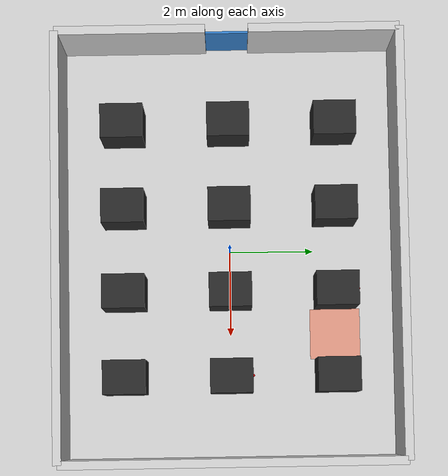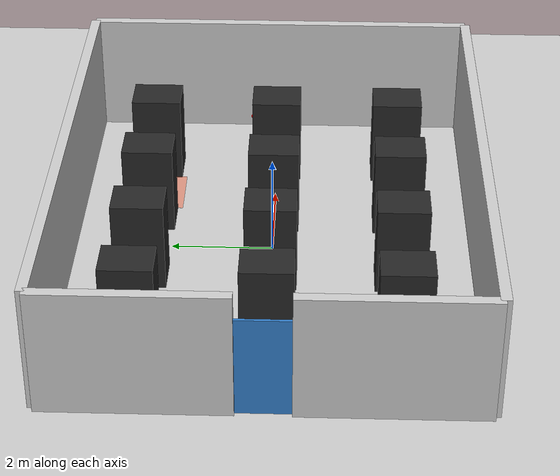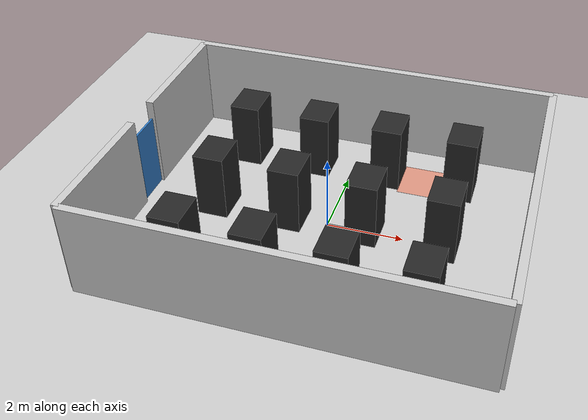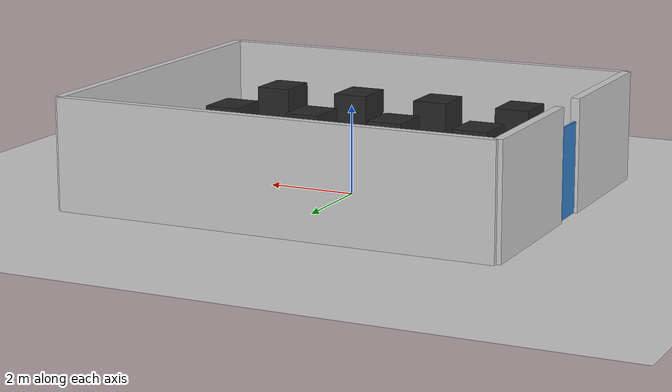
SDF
<?xml version="1.0" ?>
<sdf version="1.7">
  <world name="server_room">

    <include>
      <uri>model://sun</uri>
    </include>
    <include>
      <uri>model://ground_plane</uri>
    </include>

    <physics type="ode">
      <real_time_update_rate>1000.0</real_time_update_rate>
      <max_step_size>0.001</max_step_size>
      <real_time_factor>1</real_time_factor>
    </physics>

    <!-- Murs extérieurs de la salle serveur (10m x 8m)                 -->
    <model name="wall_north">
      <static>true</static>
      <pose>0 4 1.25 0 0 0</pose>
      <link name="link">
        <collision name="collision">
          <geometry><box><size>10 0.2 2.5</size></box></geometry>
        </collision>
        <visual name="visual">
          <geometry><box><size>10 0.2 2.5</size></box></geometry>
          <material><ambient>0.8 0.8 0.8 1</ambient></material>
        </visual>
      </link>
    </model>

    <model name="wall_south">
      <static>true</static>
      <pose>0 -4 1.25 0 0 0</pose>
      <link name="link">
        <collision name="collision">
          <geometry><box><size>10 0.2 2.5</size></box></geometry>
        </collision>
        <visual name="visual">
          <geometry><box><size>10 0.2 2.5</size></box></geometry>
          <material><ambient>0.8 0.8 0.8 1</ambient></material>
        </visual>
      </link>
    </model>

    <model name="wall_east">
      <static>true</static>
      <pose>5 0 1.25 0 0 1.5708</pose>
      <link name="link">
        <collision name="collision">
          <geometry><box><size>8 0.2 2.5</size></box></geometry>
        </collision>
        <visual name="visual">
          <geometry><box><size>8 0.2 2.5</size></box></geometry>
          <material><ambient>0.8 0.8 0.8 1</ambient></material>
        </visual>
      </link>
    </model>

    <model name="wall_west_1">
      <!-- Mur ouest avec une ouverture (porte automatique) au milieu -->
      <static>true</static>
      <pose>-5 -2.25 1.25 0 0 1.5708</pose>
      <link name="link">
        <collision name="collision">
          <geometry><box><size>3.5 0.2 2.5</size></box></geometry>
        </collision>
        <visual name="visual">
          <geometry><box><size>3.5 0.2 2.5</size></box></geometry>
          <material><ambient>0.8 0.8 0.8 1</ambient></material>
        </visual>
      </link>
    </model>
    <model name="wall_west_2">
      <static>true</static>
      <pose>-5 2.25 1.25 0 0 1.5708</pose>
      <link name="link">
        <collision name="collision">
          <geometry><box><size>3.5 0.2 2.5</size></box></geometry>
        </collision>
        <visual name="visual">
          <geometry><box><size>3.5 0.2 2.5</size></box></geometry>
          <material><ambient>0.8 0.8 0.8 1</ambient></material>
        </visual>
      </link>
    </model>

    <!-- Porte "automatique" : modèle statique simple, ouverte.
         Pour l'animer (ouverture/fermeture), ajouter un plugin
         gazebo_ros_joint_state_publisher + un joint prismatique. -->
    <model name="server_room_door">
      <static>true</static>
      <pose>-5 0 1.0 0 0 1.5708</pose>
      <link name="link">
        <visual name="visual">
          <geometry><box><size>1.4 0.05 2.0</size></box></geometry>
          <material><ambient>0.2 0.5 0.8 1</ambient></material>
        </visual>
      </link>
    </model>

    <!-- Macro-like racks : 3 rangées x 4 racks = 12 racks              -->
    <!-- Couloirs entre les rangées pour laisser passer le robot        -->
    <!-- Rangée 1 : y = 2.5 -->
    <model name="rack_1_1"><static>true</static><pose>-3 2.5 0.9 0 0 0</pose>
      <link name="link"><collision name="collision"><geometry><box><size>0.8 1.0 1.8</size></box></geometry></collision>
      <visual name="visual"><geometry><box><size>0.8 1.0 1.8</size></box></geometry><material><ambient>0.15 0.15 0.15 1</ambient></material></visual></link>
    </model>
    <model name="rack_1_2"><static>true</static><pose>-1 2.5 0.9 0 0 0</pose>
      <link name="link"><collision name="collision"><geometry><box><size>0.8 1.0 1.8</size></box></geometry></collision>
      <visual name="visual"><geometry><box><size>0.8 1.0 1.8</size></box></geometry><material><ambient>0.15 0.15 0.15 1</ambient></material></visual></link>
    </model>
    <model name="rack_1_3"><static>true</static><pose>1 2.5 0.9 0 0 0</pose>
      <link name="link"><collision name="collision"><geometry><box><size>0.8 1.0 1.8</size></box></geometry></collision>
      <visual name="visual"><geometry><box><size>0.8 1.0 1.8</size></box></geometry><material><ambient>0.15 0.15 0.15 1</ambient></material></visual></link>
    </model>
    <model name="rack_1_4"><static>true</static><pose>3 2.5 0.9 0 0 0</pose>
      <link name="link"><collision name="collision"><geometry><box><size>0.8 1.0 1.8</size></box></geometry></collision>
      <visual name="visual"><geometry><box><size>0.8 1.0 1.8</size></box></geometry><material><ambient>0.15 0.15 0.15 1</ambient></material></visual></link>
    </model>

    <!-- Rangée 2 : y = 0 -->
    <model name="rack_2_1"><static>true</static><pose>-3 0 0.9 0 0 0</pose>
      <link name="link"><collision name="collision"><geometry><box><size>0.8 1.0 1.8</size></box></geometry></collision>
      <visual name="visual"><geometry><box><size>0.8 1.0 1.8</size></box></geometry><material><ambient>0.15 0.15 0.15 1</ambient></material></visual></link>
    </model>
    <model name="rack_2_2"><static>true</static><pose>-1 0 0.9 0 0 0</pose>
      <link name="link"><collision name="collision"><geometry><box><size>0.8 1.0 1.8</size></box></geometry></collision>
      <visual name="visual"><geometry><box><size>0.8 1.0 1.8</size></box></geometry><material><ambient>0.15 0.15 0.15 1</ambient></material></visual></link>
    </model>
    <model name="rack_2_3"><static>true</static><pose>1 0 0.9 0 0 0</pose>
      <link name="link"><collision name="collision"><geometry><box><size>0.8 1.0 1.8</size></box></geometry></collision>
      <visual name="visual"><geometry><box><size>0.8 1.0 1.8</size></box></geometry><material><ambient>0.15 0.15 0.15 1</ambient></material></visual></link>
    </model>
    <model name="rack_2_4"><static>true</static><pose>3 0 0.9 0 0 0</pose>
      <link name="link"><collision name="collision"><geometry><box><size>0.8 1.0 1.8</size></box></geometry></collision>
      <visual name="visual"><geometry><box><size>0.8 1.0 1.8</size></box></geometry><material><ambient>0.15 0.15 0.15 1</ambient></material></visual></link>
    </model>

    <!-- Rangée 3 : y = -2.5 -->
    <model name="rack_3_1"><static>true</static><pose>-3 -2.5 0.9 0 0 0</pose>
      <link name="link"><collision name="collision"><geometry><box><size>0.8 1.0 1.8</size></box></geometry></collision>
      <visual name="visual"><geometry><box><size>0.8 1.0 1.8</size></box></geometry><material><ambient>0.15 0.15 0.15 1</ambient></material></visual></link>
    </model>
    <model name="rack_3_2"><static>true</static><pose>-1 -2.5 0.9 0 0 0</pose>
      <link name="link"><collision name="collision"><geometry><box><size>0.8 1.0 1.8</size></box></geometry></collision>
      <visual name="visual"><geometry><box><size>0.8 1.0 1.8</size></box></geometry><material><ambient>0.15 0.15 0.15 1</ambient></material></visual></link>
    </model>
    <model name="rack_3_3"><static>true</static><pose>1 -2.5 0.9 0 0 0</pose>
      <link name="link"><collision name="collision"><geometry><box><size>0.8 1.0 1.8</size></box></geometry></collision>
      <visual name="visual"><geometry><box><size>0.8 1.0 1.8</size></box></geometry><material><ambient>0.15 0.15 0.15 1</ambient></material></visual></link>
    </model>
    <model name="rack_3_4"><static>true</static><pose>3 -2.5 0.9 0 0 0</pose>
      <link name="link"><collision name="collision"><geometry><box><size>0.8 1.0 1.8</size></box></geometry></collision>
      <visual name="visual"><geometry><box><size>0.8 1.0 1.8</size></box></geometry><material><ambient>0.15 0.15 0.15 1</ambient></material></visual></link>
    </model>

    <!-- Voyants rouges collés sur quelques racks (cibles de détection) -->
    <!-- Décale-les / active-les au hasard pour créer des "anomalies"   -->
    <model name="red_led_rack_1_3">
      <static>true</static>
      <pose>1 3.0 1.3 0 0 0</pose>
      <link name="link">
        <visual name="visual">
          <geometry><sphere><radius>0.04</radius></sphere></geometry>
          <material><ambient>1 0 0 1</ambient><emissive>1 0 0 1</emissive></material>
        </visual>
      </link>
    </model>

    <model name="red_led_rack_2_4">
      <static>true</static>
      <pose>3 0.5 1.3 0 0 0</pose>
      <link name="link">
        <visual name="visual">
          <geometry><sphere><radius>0.04</radius></sphere></geometry>
          <material><ambient>1 0 0 1</ambient><emissive>1 0 0 1</emissive></material>
        </visual>
      </link>
    </model>

    <!-- Zone chaude simulée (juste un marquage visuel au sol, rouge translucide) -->
    <model name="hot_zone_marker">
      <static>true</static>
      <pose>2 2.5 0.01 0 0 0</pose>
      <link name="link">
        <visual name="visual">
          <geometry><box><size>1.2 1.2 0.01</size></box></geometry>
          <material><ambient>1 0.3 0.1 0.4</ambient></material>
        </visual>
      </link>
    </model>

  </world>
</sdf>
